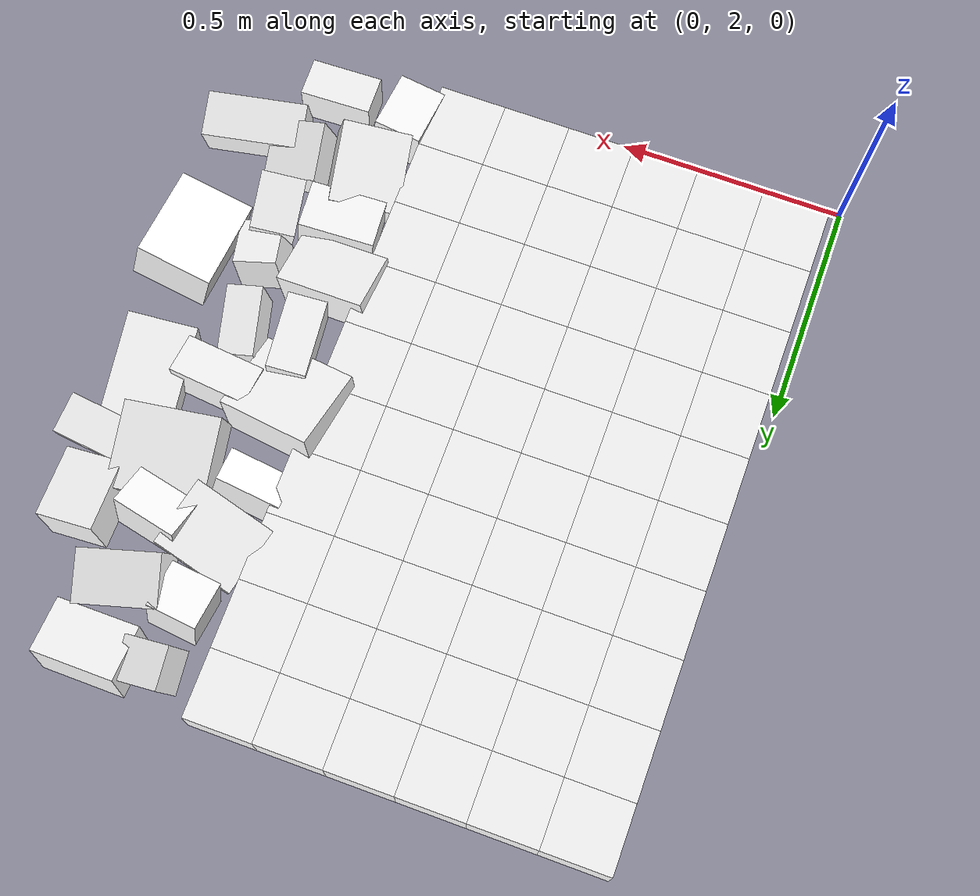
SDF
<sdf version="1.7">
 <world name="default">
  <include><uri>model://sun</uri></include>
  <model name="static_environment">
   <static>true</static>
   <link name="region_214">
    <pose>0.09999999999999964 2.0999999999999996 0.0 0.0 0.0 0.0</pose>
    <collision name="region_214_collision">
     <geometry><box><size>0.15 0.15 0.1</size></box></geometry>
     <surface><friction><ode><mu>1.0</mu><mu2>1.0</mu2></ode></friction></surface>
    </collision>
    <visual name="region_214_visual">
     <geometry><box><size>0.15 0.15 0.1</size></box></geometry>
     <material><ambient>1.0 1.0 1.0 1.0</ambient><diffuse>1.0 1.0 1.0 1.0</diffuse></material>
    </visual>
   </link>
   <link name="region_215">
    <pose>0.24999999999999956 2.0999999999999996 0.0 0.0 0.0 0.0</pose>
    <collision name="region_215_collision">
     <geometry><box><size>0.15 0.15 0.1</size></box></geometry>
     <surface><friction><ode><mu>1.0</mu><mu2>1.0</mu2></ode></friction></surface>
    </collision>
    <visual name="region_215_visual">
     <geometry><box><size>0.15 0.15 0.1</size></box></geometry>
     <material><ambient>1.0 1.0 1.0 1.0</ambient><diffuse>1.0 1.0 1.0 1.0</diffuse></material>
    </visual>
   </link>
   <link name="region_216">
    <pose>0.39999999999999947 2.0999999999999996 0.0 0.0 0.0 0.0</pose>
    <collision name="region_216_collision">
     <geometry><box><size>0.15 0.15 0.1</size></box></geometry>
     <surface><friction><ode><mu>1.0</mu><mu2>1.0</mu2></ode></friction></surface>
    </collision>
    <visual name="region_216_visual">
     <geometry><box><size>0.15 0.15 0.1</size></box></geometry>
     <material><ambient>1.0 1.0 1.0 1.0</ambient><diffuse>1.0 1.0 1.0 1.0</diffuse></material>
    </visual>
   </link>
   <link name="region_217">
    <pose>0.5499999999999994 2.0999999999999996 0.0 0.0 0.0 0.0</pose>
    <collision name="region_217_collision">
     <geometry><box><size>0.15 0.15 0.1</size></box></geometry>
     <surface><friction><ode><mu>1.0</mu><mu2>1.0</mu2></ode></friction></surface>
    </collision>
    <visual name="region_217_visual">
     <geometry><box><size>0.15 0.15 0.1</size></box></geometry>
     <material><ambient>1.0 1.0 1.0 1.0</ambient><diffuse>1.0 1.0 1.0 1.0</diffuse></material>
    </visual>
   </link>
   <link name="region_218">
    <pose>0.6999999999999993 2.0999999999999996 0.0 0.0 0.0 0.0</pose>
    <collision name="region_218_collision">
     <geometry><box><size>0.15 0.15 0.1</size></box></geometry>
     <surface><friction><ode><mu>1.0</mu><mu2>1.0</mu2></ode></friction></surface>
    </collision>
    <visual name="region_218_visual">
     <geometry><box><size>0.15 0.15 0.1</size></box></geometry>
     <material><ambient>1.0 1.0 1.0 1.0</ambient><diffuse>1.0 1.0 1.0 1.0</diffuse></material>
    </visual>
   </link>
   <link name="region_219">
    <pose>0.8499999999999992 2.0999999999999996 0.0 0.0 0.0 0.0</pose>
    <collision name="region_219_collision">
     <geometry><box><size>0.15 0.15 0.1</size></box></geometry>
     <surface><friction><ode><mu>1.0</mu><mu2>1.0</mu2></ode></friction></surface>
    </collision>
    <visual name="region_219_visual">
     <geometry><box><size>0.15 0.15 0.1</size></box></geometry>
     <material><ambient>1.0 1.0 1.0 1.0</ambient><diffuse>1.0 1.0 1.0 1.0</diffuse></material>
    </visual>
   </link>
   <link name="region_234">
    <pose>0.09999999999999964 2.2499999999999996 0.0 0.0 0.0 0.0</pose>
    <collision name="region_234_collision">
     <geometry><box><size>0.15 0.15 0.1</size></box></geometry>
     <surface><friction><ode><mu>1.0</mu><mu2>1.0</mu2></ode></friction></surface>
    </collision>
    <visual name="region_234_visual">
     <geometry><box><size>0.15 0.15 0.1</size></box></geometry>
     <material><ambient>1.0 1.0 1.0 1.0</ambient><diffuse>1.0 1.0 1.0 1.0</diffuse></material>
    </visual>
   </link>
   <link name="region_235">
    <pose>0.24999999999999956 2.2499999999999996 0.0 0.0 0.0 0.0</pose>
    <collision name="region_235_collision">
     <geometry><box><size>0.15 0.15 0.1</size></box></geometry>
     <surface><friction><ode><mu>1.0</mu><mu2>1.0</mu2></ode></friction></surface>
    </collision>
    <visual name="region_235_visual">
     <geometry><box><size>0.15 0.15 0.1</size></box></geometry>
     <material><ambient>1.0 1.0 1.0 1.0</ambient><diffuse>1.0 1.0 1.0 1.0</diffuse></material>
    </visual>
   </link>
   <link name="region_236">
    <pose>0.39999999999999947 2.2499999999999996 0.0 0.0 0.0 0.0</pose>
    <collision name="region_236_collision">
     <geometry><box><size>0.15 0.15 0.1</size></box></geometry>
     <surface><friction><ode><mu>1.0</mu><mu2>1.0</mu2></ode></friction></surface>
    </collision>
    <visual name="region_236_visual">
     <geometry><box><size>0.15 0.15 0.1</size></box></geometry>
     <material><ambient>1.0 1.0 1.0 1.0</ambient><diffuse>1.0 1.0 1.0 1.0</diffuse></material>
    </visual>
   </link>
   <link name="region_237">
    <pose>0.5499999999999994 2.2499999999999996 0.0 0.0 0.0 0.0</pose>
    <collision name="region_237_collision">
     <geometry><box><size>0.15 0.15 0.1</size></box></geometry>
     <surface><friction><ode><mu>1.0</mu><mu2>1.0</mu2></ode></friction></surface>
    </collision>
    <visual name="region_237_visual">
     <geometry><box><size>0.15 0.15 0.1</size></box></geometry>
     <material><ambient>1.0 1.0 1.0 1.0</ambient><diffuse>1.0 1.0 1.0 1.0</diffuse></material>
    </visual>
   </link>
   <link name="region_238">
    <pose>0.6999999999999993 2.2499999999999996 0.0 0.0 0.0 0.0</pose>
    <collision name="region_238_collision">
     <geometry><box><size>0.15 0.15 0.1</size></box></geometry>
     <surface><friction><ode><mu>1.0</mu><mu2>1.0</mu2></ode></friction></surface>
    </collision>
    <visual name="region_238_visual">
     <geometry><box><size>0.15 0.15 0.1</size></box></geometry>
     <material><ambient>1.0 1.0 1.0 1.0</ambient><diffuse>1.0 1.0 1.0 1.0</diffuse></material>
    </visual>
   </link>
   <link name="region_239">
    <pose>0.8499999999999992 2.2499999999999996 0.0 0.0 0.0 0.0</pose>
    <collision name="region_239_collision">
     <geometry><box><size>0.15 0.15 0.1</size></box></geometry>
     <surface><friction><ode><mu>1.0</mu><mu2>1.0</mu2></ode></friction></surface>
    </collision>
    <visual name="region_239_visual">
     <geometry><box><size>0.15 0.15 0.1</size></box></geometry>
     <material><ambient>1.0 1.0 1.0 1.0</ambient><diffuse>1.0 1.0 1.0 1.0</diffuse></material>
    </visual>
   </link>
   <link name="region_254">
    <pose>0.09999999999999964 2.3999999999999995 0.0 0.0 0.0 0.0</pose>
    <collision name="region_254_collision">
     <geometry><box><size>0.15 0.15 0.1</size></box></geometry>
     <surface><friction><ode><mu>1.0</mu><mu2>1.0</mu2></ode></friction></surface>
    </collision>
    <visual name="region_254_visual">
     <geometry><box><size>0.15 0.15 0.1</size></box></geometry>
     <material><ambient>1.0 1.0 1.0 1.0</ambient><diffuse>1.0 1.0 1.0 1.0</diffuse></material>
    </visual>
   </link>
   <link name="region_255">
    <pose>0.24999999999999956 2.3999999999999995 0.0 0.0 0.0 0.0</pose>
    <collision name="region_255_collision">
     <geometry><box><size>0.15 0.15 0.1</size></box></geometry>
     <surface><friction><ode><mu>1.0</mu><mu2>1.0</mu2></ode></friction></surface>
    </collision>
    <visual name="region_255_visual">
     <geometry><box><size>0.15 0.15 0.1</size></box></geometry>
     <material><ambient>1.0 1.0 1.0 1.0</ambient><diffuse>1.0 1.0 1.0 1.0</diffuse></material>
    </visual>
   </link>
   <link name="region_256">
    <pose>0.39999999999999947 2.3999999999999995 0.0 0.0 0.0 0.0</pose>
    <collision name="region_256_collision">
     <geometry><box><size>0.15 0.15 0.1</size></box></geometry>
     <surface><friction><ode><mu>1.0</mu><mu2>1.0</mu2></ode></friction></surface>
    </collision>
    <visual name="region_256_visual">
     <geometry><box><size>0.15 0.15 0.1</size></box></geometry>
     <material><ambient>1.0 1.0 1.0 1.0</ambient><diffuse>1.0 1.0 1.0 1.0</diffuse></material>
    </visual>
   </link>
   <link name="region_257">
    <pose>0.5499999999999994 2.3999999999999995 0.0 0.0 0.0 0.0</pose>
    <collision name="region_257_collision">
     <geometry><box><size>0.15 0.15 0.1</size></box></geometry>
     <surface><friction><ode><mu>1.0</mu><mu2>1.0</mu2></ode></friction></surface>
    </collision>
    <visual name="region_257_visual">
     <geometry><box><size>0.15 0.15 0.1</size></box></geometry>
     <material><ambient>1.0 1.0 1.0 1.0</ambient><diffuse>1.0 1.0 1.0 1.0</diffuse></material>
    </visual>
   </link>
   <link name="region_258">
    <pose>0.6999999999999993 2.3999999999999995 0.0 0.0 0.0 0.0</pose>
    <collision name="region_258_collision">
     <geometry><box><size>0.15 0.15 0.1</size></box></geometry>
     <surface><friction><ode><mu>1.0</mu><mu2>1.0</mu2></ode></friction></surface>
    </collision>
    <visual name="region_258_visual">
     <geometry><box><size>0.15 0.15 0.1</size></box></geometry>
     <material><ambient>1.0 1.0 1.0 1.0</ambient><diffuse>1.0 1.0 1.0 1.0</diffuse></material>
    </visual>
   </link>
   <link name="region_259">
    <pose>0.8499999999999992 2.3999999999999995 0.0 0.0 0.0 0.0</pose>
    <collision name="region_259_collision">
     <geometry><box><size>0.15 0.15 0.1</size></box></geometry>
     <surface><friction><ode><mu>1.0</mu><mu2>1.0</mu2></ode></friction></surface>
    </collision>
    <visual name="region_259_visual">
     <geometry><box><size>0.15 0.15 0.1</size></box></geometry>
     <material><ambient>1.0 1.0 1.0 1.0</ambient><diffuse>1.0 1.0 1.0 1.0</diffuse></material>
    </visual>
   </link>
   <link name="region_274">
    <pose>0.09999999999999964 2.5499999999999994 0.0 0.0 0.0 0.0</pose>
    <collision name="region_274_collision">
     <geometry><box><size>0.15 0.15 0.1</size></box></geometry>
     <surface><friction><ode><mu>1.0</mu><mu2>1.0</mu2></ode></friction></surface>
    </collision>
    <visual name="region_274_visual">
     <geometry><box><size>0.15 0.15 0.1</size></box></geometry>
     <material><ambient>1.0 1.0 1.0 1.0</ambient><diffuse>1.0 1.0 1.0 1.0</diffuse></material>
    </visual>
   </link>
   <link name="region_275">
    <pose>0.24999999999999956 2.5499999999999994 0.0 0.0 0.0 0.0</pose>
    <collision name="region_275_collision">
     <geometry><box><size>0.15 0.15 0.1</size></box></geometry>
     <surface><friction><ode><mu>1.0</mu><mu2>1.0</mu2></ode></friction></surface>
    </collision>
    <visual name="region_275_visual">
     <geometry><box><size>0.15 0.15 0.1</size></box></geometry>
     <material><ambient>1.0 1.0 1.0 1.0</ambient><diffuse>1.0 1.0 1.0 1.0</diffuse></material>
    </visual>
   </link>
   <link name="region_276">
    <pose>0.39999999999999947 2.5499999999999994 0.0 0.0 0.0 0.0</pose>
    <collision name="region_276_collision">
     <geometry><box><size>0.15 0.15 0.1</size></box></geometry>
     <surface><friction><ode><mu>1.0</mu><mu2>1.0</mu2></ode></friction></surface>
    </collision>
    <visual name="region_276_visual">
     <geometry><box><size>0.15 0.15 0.1</size></box></geometry>
     <material><ambient>1.0 1.0 1.0 1.0</ambient><diffuse>1.0 1.0 1.0 1.0</diffuse></material>
    </visual>
   </link>
   <link name="region_277">
    <pose>0.5499999999999994 2.5499999999999994 0.0 0.0 0.0 0.0</pose>
    <collision name="region_277_collision">
     <geometry><box><size>0.15 0.15 0.1</size></box></geometry>
     <surface><friction><ode><mu>1.0</mu><mu2>1.0</mu2></ode></friction></surface>
    </collision>
    <visual name="region_277_visual">
     <geometry><box><size>0.15 0.15 0.1</size></box></geometry>
     <material><ambient>1.0 1.0 1.0 1.0</ambient><diffuse>1.0 1.0 1.0 1.0</diffuse></material>
    </visual>
   </link>
   <link name="region_278">
    <pose>0.6999999999999993 2.5499999999999994 0.0 0.0 0.0 0.0</pose>
    <collision name="region_278_collision">
     <geometry><box><size>0.15 0.15 0.1</size></box></geometry>
     <surface><friction><ode><mu>1.0</mu><mu2>1.0</mu2></ode></friction></surface>
    </collision>
    <visual name="region_278_visual">
     <geometry><box><size>0.15 0.15 0.1</size></box></geometry>
     <material><ambient>1.0 1.0 1.0 1.0</ambient><diffuse>1.0 1.0 1.0 1.0</diffuse></material>
    </visual>
   </link>
   <link name="region_279">
    <pose>0.8499999999999992 2.5499999999999994 0.0 0.0 0.0 0.0</pose>
    <collision name="region_279_collision">
     <geometry><box><size>0.15 0.15 0.1</size></box></geometry>
     <surface><friction><ode><mu>1.0</mu><mu2>1.0</mu2></ode></friction></surface>
    </collision>
    <visual name="region_279_visual">
     <geometry><box><size>0.15 0.15 0.1</size></box></geometry>
     <material><ambient>1.0 1.0 1.0 1.0</ambient><diffuse>1.0 1.0 1.0 1.0</diffuse></material>
    </visual>
   </link>
   <link name="region_294">
    <pose>0.09999999999999964 2.6999999999999997 0.0 0.0 0.0 0.0</pose>
    <collision name="region_294_collision">
     <geometry><box><size>0.15 0.15 0.1</size></box></geometry>
     <surface><friction><ode><mu>1.0</mu><mu2>1.0</mu2></ode></friction></surface>
    </collision>
    <visual name="region_294_visual">
     <geometry><box><size>0.15 0.15 0.1</size></box></geometry>
     <material><ambient>1.0 1.0 1.0 1.0</ambient><diffuse>1.0 1.0 1.0 1.0</diffuse></material>
    </visual>
   </link>
   <link name="region_295">
    <pose>0.24999999999999956 2.6999999999999997 0.0 0.0 0.0 0.0</pose>
    <collision name="region_295_collision">
     <geometry><box><size>0.15 0.15 0.1</size></box></geometry>
     <surface><friction><ode><mu>1.0</mu><mu2>1.0</mu2></ode></friction></surface>
    </collision>
    <visual name="region_295_visual">
     <geometry><box><size>0.15 0.15 0.1</size></box></geometry>
     <material><ambient>1.0 1.0 1.0 1.0</ambient><diffuse>1.0 1.0 1.0 1.0</diffuse></material>
    </visual>
   </link>
   <link name="region_296">
    <pose>0.39999999999999947 2.6999999999999997 0.0 0.0 0.0 0.0</pose>
    <collision name="region_296_collision">
     <geometry><box><size>0.15 0.15 0.1</size></box></geometry>
     <surface><friction><ode><mu>1.0</mu><mu2>1.0</mu2></ode></friction></surface>
    </collision>
    <visual name="region_296_visual">
     <geometry><box><size>0.15 0.15 0.1</size></box></geometry>
     <material><ambient>1.0 1.0 1.0 1.0</ambient><diffuse>1.0 1.0 1.0 1.0</diffuse></material>
    </visual>
   </link>
   <link name="region_297">
    <pose>0.5499999999999994 2.6999999999999997 0.0 0.0 0.0 0.0</pose>
    <collision name="region_297_collision">
     <geometry><box><size>0.15 0.15 0.1</size></box></geometry>
     <surface><friction><ode><mu>1.0</mu><mu2>1.0</mu2></ode></friction></surface>
    </collision>
    <visual name="region_297_visual">
     <geometry><box><size>0.15 0.15 0.1</size></box></geometry>
     <material><ambient>1.0 1.0 1.0 1.0</ambient><diffuse>1.0 1.0 1.0 1.0</diffuse></material>
    </visual>
   </link>
   <link name="region_298">
    <pose>0.6999999999999993 2.6999999999999997 0.0 0.0 0.0 0.0</pose>
    <collision name="region_298_collision">
     <geometry><box><size>0.15 0.15 0.1</size></box></geometry>
     <surface><friction><ode><mu>1.0</mu><mu2>1.0</mu2></ode></friction></surface>
    </collision>
    <visual name="region_298_visual">
     <geometry><box><size>0.15 0.15 0.1</size></box></geometry>
     <material><ambient>1.0 1.0 1.0 1.0</ambient><diffuse>1.0 1.0 1.0 1.0</diffuse></material>
    </visual>
   </link>
   <link name="region_299">
    <pose>0.8499999999999992 2.6999999999999997 0.0 0.0 0.0 0.0</pose>
    <collision name="region_299_collision">
     <geometry><box><size>0.15 0.15 0.1</size></box></geometry>
     <surface><friction><ode><mu>1.0</mu><mu2>1.0</mu2></ode></friction></surface>
    </collision>
    <visual name="region_299_visual">
     <geometry><box><size>0.15 0.15 0.1</size></box></geometry>
     <material><ambient>1.0 1.0 1.0 1.0</ambient><diffuse>1.0 1.0 1.0 1.0</diffuse></material>
    </visual>
   </link>
   <link name="region_314">
    <pose>0.09999999999999964 2.8499999999999996 0.0 0.0 0.0 0.0</pose>
    <collision name="region_314_collision">
     <geometry><box><size>0.15 0.15 0.1</size></box></geometry>
     <surface><friction><ode><mu>1.0</mu><mu2>1.0</mu2></ode></friction></surface>
    </collision>
    <visual name="region_314_visual">
     <geometry><box><size>0.15 0.15 0.1</size></box></geometry>
     <material><ambient>1.0 1.0 1.0 1.0</ambient><diffuse>1.0 1.0 1.0 1.0</diffuse></material>
    </visual>
   </link>
   <link name="region_315">
    <pose>0.24999999999999956 2.8499999999999996 0.0 0.0 0.0 0.0</pose>
    <collision name="region_315_collision">
     <geometry><box><size>0.15 0.15 0.1</size></box></geometry>
     <surface><friction><ode><mu>1.0</mu><mu2>1.0</mu2></ode></friction></surface>
    </collision>
    <visual name="region_315_visual">
     <geometry><box><size>0.15 0.15 0.1</size></box></geometry>
     <material><ambient>1.0 1.0 1.0 1.0</ambient><diffuse>1.0 1.0 1.0 1.0</diffuse></material>
    </visual>
   </link>
   <link name="region_316">
    <pose>0.39999999999999947 2.8499999999999996 0.0 0.0 0.0 0.0</pose>
    <collision name="region_316_collision">
     <geometry><box><size>0.15 0.15 0.1</size></box></geometry>
     <surface><friction><ode><mu>1.0</mu><mu2>1.0</mu2></ode></friction></surface>
    </collision>
    <visual name="region_316_visual">
     <geometry><box><size>0.15 0.15 0.1</size></box></geometry>
     <material><ambient>1.0 1.0 1.0 1.0</ambient><diffuse>1.0 1.0 1.0 1.0</diffuse></material>
    </visual>
   </link>
   <link name="region_317">
    <pose>0.5499999999999994 2.8499999999999996 0.0 0.0 0.0 0.0</pose>
    <collision name="region_317_collision">
     <geometry><box><size>0.15 0.15 0.1</size></box></geometry>
     <surface><friction><ode><mu>1.0</mu><mu2>1.0</mu2></ode></friction></surface>
    </collision>
    <visual name="region_317_visual">
     <geometry><box><size>0.15 0.15 0.1</size></box></geometry>
     <material><ambient>1.0 1.0 1.0 1.0</ambient><diffuse>1.0 1.0 1.0 1.0</diffuse></material>
    </visual>
   </link>
   <link name="region_318">
    <pose>0.6999999999999993 2.8499999999999996 0.0 0.0 0.0 0.0</pose>
    <collision name="region_318_collision">
     <geometry><box><size>0.15 0.15 0.1</size></box></geometry>
     <surface><friction><ode><mu>1.0</mu><mu2>1.0</mu2></ode></friction></surface>
    </collision>
    <visual name="region_318_visual">
     <geometry><box><size>0.15 0.15 0.1</size></box></geometry>
     <material><ambient>1.0 1.0 1.0 1.0</ambient><diffuse>1.0 1.0 1.0 1.0</diffuse></material>
    </visual>
   </link>
   <link name="region_319">
    <pose>0.8499999999999992 2.8499999999999996 0.0 0.0 0.0 0.0</pose>
    <collision name="region_319_collision">
     <geometry><box><size>0.15 0.15 0.1</size></box></geometry>
     <surface><friction><ode><mu>1.0</mu><mu2>1.0</mu2></ode></friction></surface>
    </collision>
    <visual name="region_319_visual">
     <geometry><box><size>0.15 0.15 0.1</size></box></geometry>
     <material><ambient>1.0 1.0 1.0 1.0</ambient><diffuse>1.0 1.0 1.0 1.0</diffuse></material>
    </visual>
   </link>
   <link name="region_334">
    <pose>0.09999999999999964 2.9999999999999996 0.0 0.0 0.0 0.0</pose>
    <collision name="region_334_collision">
     <geometry><box><size>0.15 0.15 0.1</size></box></geometry>
     <surface><friction><ode><mu>1.0</mu><mu2>1.0</mu2></ode></friction></surface>
    </collision>
    <visual name="region_334_visual">
     <geometry><box><size>0.15 0.15 0.1</size></box></geometry>
     <material><ambient>1.0 1.0 1.0 1.0</ambient><diffuse>1.0 1.0 1.0 1.0</diffuse></material>
    </visual>
   </link>
   <link name="region_335">
    <pose>0.24999999999999956 2.9999999999999996 0.0 0.0 0.0 0.0</pose>
    <collision name="region_335_collision">
     <geometry><box><size>0.15 0.15 0.1</size></box></geometry>
     <surface><friction><ode><mu>1.0</mu><mu2>1.0</mu2></ode></friction></surface>
    </collision>
    <visual name="region_335_visual">
     <geometry><box><size>0.15 0.15 0.1</size></box></geometry>
     <material><ambient>1.0 1.0 1.0 1.0</ambient><diffuse>1.0 1.0 1.0 1.0</diffuse></material>
    </visual>
   </link>
   <link name="region_336">
    <pose>0.39999999999999947 2.9999999999999996 0.0 0.0 0.0 0.0</pose>
    <collision name="region_336_collision">
     <geometry><box><size>0.15 0.15 0.1</size></box></geometry>
     <surface><friction><ode><mu>1.0</mu><mu2>1.0</mu2></ode></friction></surface>
    </collision>
    <visual name="region_336_visual">
     <geometry><box><size>0.15 0.15 0.1</size></box></geometry>
     <material><ambient>1.0 1.0 1.0 1.0</ambient><diffuse>1.0 1.0 1.0 1.0</diffuse></material>
    </visual>
   </link>
   <link name="region_337">
    <pose>0.5499999999999994 2.9999999999999996 0.0 0.0 0.0 0.0</pose>
    <collision name="region_337_collision">
     <geometry><box><size>0.15 0.15 0.1</size></box></geometry>
     <surface><friction><ode><mu>1.0</mu><mu2>1.0</mu2></ode></friction></surface>
    </collision>
    <visual name="region_337_visual">
     <geometry><box><size>0.15 0.15 0.1</size></box></geometry>
     <material><ambient>1.0 1.0 1.0 1.0</ambient><diffuse>1.0 1.0 1.0 1.0</diffuse></material>
    </visual>
   </link>
   <link name="region_338">
    <pose>0.6999999999999993 2.9999999999999996 0.0 0.0 0.0 0.0</pose>
    <collision name="region_338_collision">
     <geometry><box><size>0.15 0.15 0.1</size></box></geometry>
     <surface><friction><ode><mu>1.0</mu><mu2>1.0</mu2></ode></friction></surface>
    </collision>
    <visual name="region_338_visual">
     <geometry><box><size>0.15 0.15 0.1</size></box></geometry>
     <material><ambient>1.0 1.0 1.0 1.0</ambient><diffuse>1.0 1.0 1.0 1.0</diffuse></material>
    </visual>
   </link>
   <link name="region_339">
    <pose>0.8499999999999992 2.9999999999999996 0.0 0.0 0.0 0.0</pose>
    <collision name="region_339_collision">
     <geometry><box><size>0.15 0.15 0.1</size></box></geometry>
     <surface><friction><ode><mu>1.0</mu><mu2>1.0</mu2></ode></friction></surface>
    </collision>
    <visual name="region_339_visual">
     <geometry><box><size>0.15 0.15 0.1</size></box></geometry>
     <material><ambient>1.0 1.0 1.0 1.0</ambient><diffuse>1.0 1.0 1.0 1.0</diffuse></material>
    </visual>
   </link>
   <link name="region_354">
    <pose>0.09999999999999964 3.1499999999999995 0.0 0.0 0.0 0.0</pose>
    <collision name="region_354_collision">
     <geometry><box><size>0.15 0.15 0.1</size></box></geometry>
     <surface><friction><ode><mu>1.0</mu><mu2>1.0</mu2></ode></friction></surface>
    </collision>
    <visual name="region_354_visual">
     <geometry><box><size>0.15 0.15 0.1</size></box></geometry>
     <material><ambient>1.0 1.0 1.0 1.0</ambient><diffuse>1.0 1.0 1.0 1.0</diffuse></material>
    </visual>
   </link>
   <link name="region_355">
    <pose>0.24999999999999956 3.1499999999999995 0.0 0.0 0.0 0.0</pose>
    <collision name="region_355_collision">
     <geometry><box><size>0.15 0.15 0.1</size></box></geometry>
     <surface><friction><ode><mu>1.0</mu><mu2>1.0</mu2></ode></friction></surface>
    </collision>
    <visual name="region_355_visual">
     <geometry><box><size>0.15 0.15 0.1</size></box></geometry>
     <material><ambient>1.0 1.0 1.0 1.0</ambient><diffuse>1.0 1.0 1.0 1.0</diffuse></material>
    </visual>
   </link>
   <link name="region_356">
    <pose>0.39999999999999947 3.1499999999999995 0.0 0.0 0.0 0.0</pose>
    <collision name="region_356_collision">
     <geometry><box><size>0.15 0.15 0.1</size></box></geometry>
     <surface><friction><ode><mu>1.0</mu><mu2>1.0</mu2></ode></friction></surface>
    </collision>
    <visual name="region_356_visual">
     <geometry><box><size>0.15 0.15 0.1</size></box></geometry>
     <material><ambient>1.0 1.0 1.0 1.0</ambient><diffuse>1.0 1.0 1.0 1.0</diffuse></material>
    </visual>
   </link>
   <link name="region_357">
    <pose>0.5499999999999994 3.1499999999999995 0.0 0.0 0.0 0.0</pose>
    <collision name="region_357_collision">
     <geometry><box><size>0.15 0.15 0.1</size></box></geometry>
     <surface><friction><ode><mu>1.0</mu><mu2>1.0</mu2></ode></friction></surface>
    </collision>
    <visual name="region_357_visual">
     <geometry><box><size>0.15 0.15 0.1</size></box></geometry>
     <material><ambient>1.0 1.0 1.0 1.0</ambient><diffuse>1.0 1.0 1.0 1.0</diffuse></material>
    </visual>
   </link>
   <link name="region_358">
    <pose>0.6999999999999993 3.1499999999999995 0.0 0.0 0.0 0.0</pose>
    <collision name="region_358_collision">
     <geometry><box><size>0.15 0.15 0.1</size></box></geometry>
     <surface><friction><ode><mu>1.0</mu><mu2>1.0</mu2></ode></friction></surface>
    </collision>
    <visual name="region_358_visual">
     <geometry><box><size>0.15 0.15 0.1</size></box></geometry>
     <material><ambient>1.0 1.0 1.0 1.0</ambient><diffuse>1.0 1.0 1.0 1.0</diffuse></material>
    </visual>
   </link>
   <link name="region_359">
    <pose>0.8499999999999992 3.1499999999999995 0.0 0.0 0.0 0.0</pose>
    <collision name="region_359_collision">
     <geometry><box><size>0.15 0.15 0.1</size></box></geometry>
     <surface><friction><ode><mu>1.0</mu><mu2>1.0</mu2></ode></friction></surface>
    </collision>
    <visual name="region_359_visual">
     <geometry><box><size>0.15 0.15 0.1</size></box></geometry>
     <material><ambient>1.0 1.0 1.0 1.0</ambient><diffuse>1.0 1.0 1.0 1.0</diffuse></material>
    </visual>
   </link>
   <link name="region_374">
    <pose>0.09999999999999964 3.2999999999999994 0.0 0.0 0.0 0.0</pose>
    <collision name="region_374_collision">
     <geometry><box><size>0.15 0.15 0.1</size></box></geometry>
     <surface><friction><ode><mu>1.0</mu><mu2>1.0</mu2></ode></friction></surface>
    </collision>
    <visual name="region_374_visual">
     <geometry><box><size>0.15 0.15 0.1</size></box></geometry>
     <material><ambient>1.0 1.0 1.0 1.0</ambient><diffuse>1.0 1.0 1.0 1.0</diffuse></material>
    </visual>
   </link>
   <link name="region_375">
    <pose>0.24999999999999956 3.2999999999999994 0.0 0.0 0.0 0.0</pose>
    <collision name="region_375_collision">
     <geometry><box><size>0.15 0.15 0.1</size></box></geometry>
     <surface><friction><ode><mu>1.0</mu><mu2>1.0</mu2></ode></friction></surface>
    </collision>
    <visual name="region_375_visual">
     <geometry><box><size>0.15 0.15 0.1</size></box></geometry>
     <material><ambient>1.0 1.0 1.0 1.0</ambient><diffuse>1.0 1.0 1.0 1.0</diffuse></material>
    </visual>
   </link>
   <link name="region_376">
    <pose>0.39999999999999947 3.2999999999999994 0.0 0.0 0.0 0.0</pose>
    <collision name="region_376_collision">
     <geometry><box><size>0.15 0.15 0.1</size></box></geometry>
     <surface><friction><ode><mu>1.0</mu><mu2>1.0</mu2></ode></friction></surface>
    </collision>
    <visual name="region_376_visual">
     <geometry><box><size>0.15 0.15 0.1</size></box></geometry>
     <material><ambient>1.0 1.0 1.0 1.0</ambient><diffuse>1.0 1.0 1.0 1.0</diffuse></material>
    </visual>
   </link>
   <link name="region_377">
    <pose>0.5499999999999994 3.2999999999999994 0.0 0.0 0.0 0.0</pose>
    <collision name="region_377_collision">
     <geometry><box><size>0.15 0.15 0.1</size></box></geometry>
     <surface><friction><ode><mu>1.0</mu><mu2>1.0</mu2></ode></friction></surface>
    </collision>
    <visual name="region_377_visual">
     <geometry><box><size>0.15 0.15 0.1</size></box></geometry>
     <material><ambient>1.0 1.0 1.0 1.0</ambient><diffuse>1.0 1.0 1.0 1.0</diffuse></material>
    </visual>
   </link>
   <link name="region_378">
    <pose>0.6999999999999993 3.2999999999999994 0.0 0.0 0.0 0.0</pose>
    <collision name="region_378_collision">
     <geometry><box><size>0.15 0.15 0.1</size></box></geometry>
     <surface><friction><ode><mu>1.0</mu><mu2>1.0</mu2></ode></friction></surface>
    </collision>
    <visual name="region_378_visual">
     <geometry><box><size>0.15 0.15 0.1</size></box></geometry>
     <material><ambient>1.0 1.0 1.0 1.0</ambient><diffuse>1.0 1.0 1.0 1.0</diffuse></material>
    </visual>
   </link>
   <link name="region_379">
    <pose>0.8499999999999992 3.2999999999999994 0.0 0.0 0.0 0.0</pose>
    <collision name="region_379_collision">
     <geometry><box><size>0.15 0.15 0.1</size></box></geometry>
     <surface><friction><ode><mu>1.0</mu><mu2>1.0</mu2></ode></friction></surface>
    </collision>
    <visual name="region_379_visual">
     <geometry><box><size>0.15 0.15 0.1</size></box></geometry>
     <material><ambient>1.0 1.0 1.0 1.0</ambient><diffuse>1.0 1.0 1.0 1.0</diffuse></material>
    </visual>
   </link>
   <link name="region_394">
    <pose>0.09999999999999964 3.4499999999999993 0.0 0.0 0.0 0.0</pose>
    <collision name="region_394_collision">
     <geometry><box><size>0.15 0.15 0.1</size></box></geometry>
     <surface><friction><ode><mu>1.0</mu><mu2>1.0</mu2></ode></friction></surface>
    </collision>
    <visual name="region_394_visual">
     <geometry><box><size>0.15 0.15 0.1</size></box></geometry>
     <material><ambient>1.0 1.0 1.0 1.0</ambient><diffuse>1.0 1.0 1.0 1.0</diffuse></material>
    </visual>
   </link>
   <link name="region_395">
    <pose>0.24999999999999956 3.4499999999999993 0.0 0.0 0.0 0.0</pose>
    <collision name="region_395_collision">
     <geometry><box><size>0.15 0.15 0.1</size></box></geometry>
     <surface><friction><ode><mu>1.0</mu><mu2>1.0</mu2></ode></friction></surface>
    </collision>
    <visual name="region_395_visual">
     <geometry><box><size>0.15 0.15 0.1</size></box></geometry>
     <material><ambient>1.0 1.0 1.0 1.0</ambient><diffuse>1.0 1.0 1.0 1.0</diffuse></material>
    </visual>
   </link>
   <link name="region_396">
    <pose>0.39999999999999947 3.4499999999999993 0.0 0.0 0.0 0.0</pose>
    <collision name="region_396_collision">
     <geometry><box><size>0.15 0.15 0.1</size></box></geometry>
     <surface><friction><ode><mu>1.0</mu><mu2>1.0</mu2></ode></friction></surface>
    </collision>
    <visual name="region_396_visual">
     <geometry><box><size>0.15 0.15 0.1</size></box></geometry>
     <material><ambient>1.0 1.0 1.0 1.0</ambient><diffuse>1.0 1.0 1.0 1.0</diffuse></material>
    </visual>
   </link>
   <link name="region_397">
    <pose>0.5499999999999994 3.4499999999999993 0.0 0.0 0.0 0.0</pose>
    <collision name="region_397_collision">
     <geometry><box><size>0.15 0.15 0.1</size></box></geometry>
     <surface><friction><ode><mu>1.0</mu><mu2>1.0</mu2></ode></friction></surface>
    </collision>
    <visual name="region_397_visual">
     <geometry><box><size>0.15 0.15 0.1</size></box></geometry>
     <material><ambient>1.0 1.0 1.0 1.0</ambient><diffuse>1.0 1.0 1.0 1.0</diffuse></material>
    </visual>
   </link>
   <link name="region_398">
    <pose>0.6999999999999993 3.4499999999999993 0.0 0.0 0.0 0.0</pose>
    <collision name="region_398_collision">
     <geometry><box><size>0.15 0.15 0.1</size></box></geometry>
     <surface><friction><ode><mu>1.0</mu><mu2>1.0</mu2></ode></friction></surface>
    </collision>
    <visual name="region_398_visual">
     <geometry><box><size>0.15 0.15 0.1</size></box></geometry>
     <material><ambient>1.0 1.0 1.0 1.0</ambient><diffuse>1.0 1.0 1.0 1.0</diffuse></material>
    </visual>
   </link>
   <link name="region_399">
    <pose>0.8499999999999992 3.4499999999999993 0.0 0.0 0.0 0.0</pose>
    <collision name="region_399_collision">
     <geometry><box><size>0.15 0.15 0.1</size></box></geometry>
     <surface><friction><ode><mu>1.0</mu><mu2>1.0</mu2></ode></friction></surface>
    </collision>
    <visual name="region_399_visual">
     <geometry><box><size>0.15 0.15 0.1</size></box></geometry>
     <material><ambient>1.0 1.0 1.0 1.0</ambient><diffuse>1.0 1.0 1.0 1.0</diffuse></material>
    </visual>
   </link>
   <link name="region_600">
    <pose>0.974557928409713 2.1120449451990706 0.013892591132290784 0.13266582652416714 -0.07661377726013507 -0.08861151151030727</pose>
    <collision name="region_600_collision">
     <geometry><box><size>0.10599878084922024 0.1389672986428669 0.1</size></box></geometry>
     <surface><friction><ode><mu>1.0</mu><mu2>1.0</mu2></ode></friction></surface>
    </collision>
    <visual name="region_600_visual">
     <geometry><box><size>0.10599878084922024 0.1389672986428669 0.1</size></box></geometry>
     <material><ambient>1.0 1.0 1.0 1.0</ambient><diffuse>1.0 1.0 1.0 1.0</diffuse></material>
    </visual>
   </link>
   <link name="region_601">
    <pose>1.1348477242225594 2.106004225134476 0.011891544897182499 0.01163427743911466 0.0003626763371940567 0.029329688105104723</pose>
    <collision name="region_601_collision">
     <geometry><box><size>0.1587530456430914 0.08647116402269943 0.1</size></box></geometry>
     <surface><friction><ode><mu>1.0</mu><mu2>1.0</mu2></ode></friction></surface>
    </collision>
    <visual name="region_601_visual">
     <geometry><box><size>0.1587530456430914 0.08647116402269943 0.1</size></box></geometry>
     <material><ambient>1.0 1.0 1.0 1.0</ambient><diffuse>1.0 1.0 1.0 1.0</diffuse></material>
    </visual>
   </link>
   <link name="region_620">
    <pose>1.011280260375115 2.268340260704485 0.02457579046929116 -0.20285144156616775 -0.2262240045344608 0.21090925589646037</pose>
    <collision name="region_620_collision">
     <geometry><box><size>0.15476320865238188 0.1823013249027158 0.1</size></box></geometry>
     <surface><friction><ode><mu>1.0</mu><mu2>1.0</mu2></ode></friction></surface>
    </collision>
    <visual name="region_620_visual">
     <geometry><box><size>0.15476320865238188 0.1823013249027158 0.1</size></box></geometry>
     <material><ambient>1.0 1.0 1.0 1.0</ambient><diffuse>1.0 1.0 1.0 1.0</diffuse></material>
    </visual>
   </link>
   <link name="region_621">
    <pose>1.1705216598001504 2.271514330636631 0.0021925477762504034 -0.18899068400277869 0.18380191517815553 0.13069119411634372</pose>
    <collision name="region_621_collision">
     <geometry><box><size>0.1178927408255511 0.1327758492672925 0.1</size></box></geometry>
     <surface><friction><ode><mu>1.0</mu><mu2>1.0</mu2></ode></friction></surface>
    </collision>
    <visual name="region_621_visual">
     <geometry><box><size>0.1178927408255511 0.1327758492672925 0.1</size></box></geometry>
     <material><ambient>1.0 1.0 1.0 1.0</ambient><diffuse>1.0 1.0 1.0 1.0</diffuse></material>
    </visual>
   </link>
   <link name="region_622">
    <pose>1.2868274494083414 2.2393287512829843 0.009902599509610484 -0.17959094850071972 0.009426253820625341 0.18462051559399206</pose>
    <collision name="region_622_collision">
     <geometry><box><size>0.22333464580819026 0.10087670916566246 0.1</size></box></geometry>
     <surface><friction><ode><mu>1.0</mu><mu2>1.0</mu2></ode></friction></surface>
    </collision>
    <visual name="region_622_visual">
     <geometry><box><size>0.22333464580819026 0.10087670916566246 0.1</size></box></geometry>
     <material><ambient>1.0 1.0 1.0 1.0</ambient><diffuse>1.0 1.0 1.0 1.0</diffuse></material>
    </visual>
   </link>
   <link name="region_640">
    <pose>1.0219643178727416 2.3997991621544883 0.016273086825840683 0.036842342344880596 -0.08323889326391587 0.07733637994165676</pose>
    <collision name="region_640_collision">
     <geometry><box><size>0.1683427792220995 0.10826772946513306 0.1</size></box></geometry>
     <surface><friction><ode><mu>1.0</mu><mu2>1.0</mu2></ode></friction></surface>
    </collision>
    <visual name="region_640_visual">
     <geometry><box><size>0.1683427792220995 0.10826772946513306 0.1</size></box></geometry>
     <material><ambient>1.0 1.0 1.0 1.0</ambient><diffuse>1.0 1.0 1.0 1.0</diffuse></material>
    </visual>
   </link>
   <link name="region_641">
    <pose>1.1607198482744066 2.427228076040712 0.04990997522369669 -0.2292336771712395 -0.18994083636864173 0.18561993483831107</pose>
    <collision name="region_641_collision">
     <geometry><box><size>0.09812847047565657 0.12685121061022625 0.1</size></box></geometry>
     <surface><friction><ode><mu>1.0</mu><mu2>1.0</mu2></ode></friction></surface>
    </collision>
    <visual name="region_641_visual">
     <geometry><box><size>0.09812847047565657 0.12685121061022625 0.1</size></box></geometry>
     <material><ambient>1.0 1.0 1.0 1.0</ambient><diffuse>1.0 1.0 1.0 1.0</diffuse></material>
    </visual>
   </link>
   <link name="region_660">
    <pose>0.9873661406064422 2.5264264124436613 0.0025352897207086 0.11321874112607172 0.20075872885332108 -0.07794649328923309</pose>
    <collision name="region_660_collision">
     <geometry><box><size>0.20672837702002833 0.1294654126342675 0.1</size></box></geometry>
     <surface><friction><ode><mu>1.0</mu><mu2>1.0</mu2></ode></friction></surface>
    </collision>
    <visual name="region_660_visual">
     <geometry><box><size>0.20672837702002833 0.1294654126342675 0.1</size></box></geometry>
     <material><ambient>1.0 1.0 1.0 1.0</ambient><diffuse>1.0 1.0 1.0 1.0</diffuse></material>
    </visual>
   </link>
   <link name="region_661">
    <pose>1.1581259186163009 2.525735763462491 0.011404384727635431 0.161602619967036 0.1303432270375769 0.2372867775419017</pose>
    <collision name="region_661_collision">
     <geometry><box><size>0.09550249048365327 0.1080038290938314 0.1</size></box></geometry>
     <surface><friction><ode><mu>1.0</mu><mu2>1.0</mu2></ode></friction></surface>
    </collision>
    <visual name="region_661_visual">
     <geometry><box><size>0.09550249048365327 0.1080038290938314 0.1</size></box></geometry>
     <material><ambient>1.0 1.0 1.0 1.0</ambient><diffuse>1.0 1.0 1.0 1.0</diffuse></material>
    </visual>
   </link>
   <link name="region_662">
    <pose>1.3086663976723165 2.5534171738025337 0.03578454350394208 0.2026209814081364 -0.19651298990845978 -0.07670832423336055</pose>
    <collision name="region_662_collision">
     <geometry><box><size>0.16763416864392744 0.21866452709255302 0.1</size></box></geometry>
     <surface><friction><ode><mu>1.0</mu><mu2>1.0</mu2></ode></friction></surface>
    </collision>
    <visual name="region_662_visual">
     <geometry><box><size>0.16763416864392744 0.21866452709255302 0.1</size></box></geometry>
     <material><ambient>1.0 1.0 1.0 1.0</ambient><diffuse>1.0 1.0 1.0 1.0</diffuse></material>
    </visual>
   </link>
   <link name="region_680">
    <pose>1.0044463735780131 2.7021659428678997 0.04902244019631466 -0.03630735622268233 -0.07347110792262612 0.0919205152189016</pose>
    <collision name="region_680_collision">
     <geometry><box><size>0.08622605023401585 0.16987991790743506 0.1</size></box></geometry>
     <surface><friction><ode><mu>1.0</mu><mu2>1.0</mu2></ode></friction></surface>
    </collision>
    <visual name="region_680_visual">
     <geometry><box><size>0.08622605023401585 0.16987991790743506 0.1</size></box></geometry>
     <material><ambient>1.0 1.0 1.0 1.0</ambient><diffuse>1.0 1.0 1.0 1.0</diffuse></material>
    </visual>
   </link>
   <link name="region_681">
    <pose>1.1289458885650876 2.7004912128792644 0.01881782350869888 -0.06926425726745716 0.0958559309275715 0.22822547001311555</pose>
    <collision name="region_681_collision">
     <geometry><box><size>0.07885263012762016 0.15590777260964306 0.1</size></box></geometry>
     <surface><friction><ode><mu>1.0</mu><mu2>1.0</mu2></ode></friction></surface>
    </collision>
    <visual name="region_681_visual">
     <geometry><box><size>0.07885263012762016 0.15590777260964306 0.1</size></box></geometry>
     <material><ambient>1.0 1.0 1.0 1.0</ambient><diffuse>1.0 1.0 1.0 1.0</diffuse></material>
    </visual>
   </link>
   <link name="region_700">
    <pose>0.9724820582012601 2.8281131698234074 0.027599820343293474 0.14396942146226221 0.20172164839471274 -0.1735835409237475</pose>
    <collision name="region_700_collision">
     <geometry><box><size>0.2148009256444085 0.18146035170654004 0.1</size></box></geometry>
     <surface><friction><ode><mu>1.0</mu><mu2>1.0</mu2></ode></friction></surface>
    </collision>
    <visual name="region_700_visual">
     <geometry><box><size>0.2148009256444085 0.18146035170654004 0.1</size></box></geometry>
     <material><ambient>1.0 1.0 1.0 1.0</ambient><diffuse>1.0 1.0 1.0 1.0</diffuse></material>
    </visual>
   </link>
   <link name="region_701">
    <pose>1.1361547749672072 2.827649646411145 0.01550187672596911 0.06606246634643337 0.036687137341491705 -0.10667415770366206</pose>
    <collision name="region_701_collision">
     <geometry><box><size>0.17829342007056279 0.08755767324457145 0.1</size></box></geometry>
     <surface><friction><ode><mu>1.0</mu><mu2>1.0</mu2></ode></friction></surface>
    </collision>
    <visual name="region_701_visual">
     <geometry><box><size>0.17829342007056279 0.08755767324457145 0.1</size></box></geometry>
     <material><ambient>1.0 1.0 1.0 1.0</ambient><diffuse>1.0 1.0 1.0 1.0</diffuse></material>
    </visual>
   </link>
   <link name="region_702">
    <pose>1.2812629100706956 2.8643866182548394 0.0006693202523061549 -0.11286521482567308 -0.1142151249027809 0.12590470667149778</pose>
    <collision name="region_702_collision">
     <geometry><box><size>0.15205394928705196 0.2243597180505849 0.1</size></box></geometry>
     <surface><friction><ode><mu>1.0</mu><mu2>1.0</mu2></ode></friction></surface>
    </collision>
    <visual name="region_702_visual">
     <geometry><box><size>0.15205394928705196 0.2243597180505849 0.1</size></box></geometry>
     <material><ambient>1.0 1.0 1.0 1.0</ambient><diffuse>1.0 1.0 1.0 1.0</diffuse></material>
    </visual>
   </link>
   <link name="region_720">
    <pose>0.982163971803848 3.025250025953208 0.010954979320498666 0.18602148217697467 -0.1909507863375971 -0.06861207357843502</pose>
    <collision name="region_720_collision">
     <geometry><box><size>0.14246005988717156 0.076785231022105 0.1</size></box></geometry>
     <surface><friction><ode><mu>1.0</mu><mu2>1.0</mu2></ode></friction></surface>
    </collision>
    <visual name="region_720_visual">
     <geometry><box><size>0.14246005988717156 0.076785231022105 0.1</size></box></geometry>
     <material><ambient>1.0 1.0 1.0 1.0</ambient><diffuse>1.0 1.0 1.0 1.0</diffuse></material>
    </visual>
   </link>
   <link name="region_721">
    <pose>1.1662767369355587 3.0262588276915783 0.03026207088640534 -0.17346198940717245 0.0397129740238954 0.13565269104195382</pose>
    <collision name="region_721_collision">
     <geometry><box><size>0.20910457040857755 0.18628311979284692 0.1</size></box></geometry>
     <surface><friction><ode><mu>1.0</mu><mu2>1.0</mu2></ode></friction></surface>
    </collision>
    <visual name="region_721_visual">
     <geometry><box><size>0.20910457040857755 0.18628311979284692 0.1</size></box></geometry>
     <material><ambient>1.0 1.0 1.0 1.0</ambient><diffuse>1.0 1.0 1.0 1.0</diffuse></material>
    </visual>
   </link>
   <link name="region_722">
    <pose>1.3085052562384085 3.022115121316405 0.005635742459779325 -0.16455470073523493 -0.21038742882014821 -0.07527111922575358</pose>
    <collision name="region_722_collision">
     <geometry><box><size>0.20502785696053707 0.09006972984390338 0.1</size></box></geometry>
     <surface><friction><ode><mu>1.0</mu><mu2>1.0</mu2></ode></friction></surface>
    </collision>
    <visual name="region_722_visual">
     <geometry><box><size>0.20502785696053707 0.09006972984390338 0.1</size></box></geometry>
     <material><ambient>1.0 1.0 1.0 1.0</ambient><diffuse>1.0 1.0 1.0 1.0</diffuse></material>
    </visual>
   </link>
   <link name="region_740">
    <pose>1.013324712665594 3.1565801567125114 0.021179390918779007 -0.09208480174547456 -0.2497708252217326 -0.22462893530388206</pose>
    <collision name="region_740_collision">
     <geometry><box><size>0.18624025735751396 0.1542465656799761 0.1</size></box></geometry>
     <surface><friction><ode><mu>1.0</mu><mu2>1.0</mu2></ode></friction></surface>
    </collision>
    <visual name="region_740_visual">
     <geometry><box><size>0.18624025735751396 0.1542465656799761 0.1</size></box></geometry>
     <material><ambient>1.0 1.0 1.0 1.0</ambient><diffuse>1.0 1.0 1.0 1.0</diffuse></material>
    </visual>
   </link>
   <link name="region_741">
    <pose>1.1351769364858808 3.1500173156457367 0.043162886812569475 0.20985389723238057 0.05923240027515714 -0.2223336910120317</pose>
    <collision name="region_741_collision">
     <geometry><box><size>0.14771594366788984 0.0911280490300668 0.1</size></box></geometry>
     <surface><friction><ode><mu>1.0</mu><mu2>1.0</mu2></ode></friction></surface>
    </collision>
    <visual name="region_741_visual">
     <geometry><box><size>0.14771594366788984 0.0911280490300668 0.1</size></box></geometry>
     <material><ambient>1.0 1.0 1.0 1.0</ambient><diffuse>1.0 1.0 1.0 1.0</diffuse></material>
    </visual>
   </link>
   <link name="region_742">
    <pose>1.2962077530470686 3.164285174915416 0.012653176571452719 0.08015088961140077 0.18300721137484838 0.024859028986265852</pose>
    <collision name="region_742_collision">
     <geometry><box><size>0.1298771043991081 0.15838414141825233 0.1</size></box></geometry>
     <surface><friction><ode><mu>1.0</mu><mu2>1.0</mu2></ode></friction></surface>
    </collision>
    <visual name="region_742_visual">
     <geometry><box><size>0.1298771043991081 0.15838414141825233 0.1</size></box></geometry>
     <material><ambient>1.0 1.0 1.0 1.0</ambient><diffuse>1.0 1.0 1.0 1.0</diffuse></material>
    </visual>
   </link>
   <link name="region_760">
    <pose>1.0165078398211644 3.3046103272844394 0.019280515760479122 0.18341292898072464 -0.04445712216738196 -0.10066306801080649</pose>
    <collision name="region_760_collision">
     <geometry><box><size>0.1105542252462416 0.10876882735404735 0.1</size></box></geometry>
     <surface><friction><ode><mu>1.0</mu><mu2>1.0</mu2></ode></friction></surface>
    </collision>
    <visual name="region_760_visual">
     <geometry><box><size>0.1105542252462416 0.10876882735404735 0.1</size></box></geometry>
     <material><ambient>1.0 1.0 1.0 1.0</ambient><diffuse>1.0 1.0 1.0 1.0</diffuse></material>
    </visual>
   </link>
   <link name="region_761">
    <pose>1.1480211379968952 3.3011662267309716 0.029532488867962326 -0.20628506015364428 0.14631750771116186 0.2444053959029746</pose>
    <collision name="region_761_collision">
     <geometry><box><size>0.18328154125581833 0.11425271149305985 0.1</size></box></geometry>
     <surface><friction><ode><mu>1.0</mu><mu2>1.0</mu2></ode></friction></surface>
    </collision>
    <visual name="region_761_visual">
     <geometry><box><size>0.18328154125581833 0.11425271149305985 0.1</size></box></geometry>
     <material><ambient>1.0 1.0 1.0 1.0</ambient><diffuse>1.0 1.0 1.0 1.0</diffuse></material>
    </visual>
   </link>
   <link name="region_780">
    <pose>1.0273552078270125 3.4469223251535523 0.03363540240015263 -0.1390682411929018 0.22412332844316635 0.047118892329800044</pose>
    <collision name="region_780_collision">
     <geometry><box><size>0.09943182888425288 0.09365227103292594 0.1</size></box></geometry>
     <surface><friction><ode><mu>1.0</mu><mu2>1.0</mu2></ode></friction></surface>
    </collision>
    <visual name="region_780_visual">
     <geometry><box><size>0.09943182888425288 0.09365227103292594 0.1</size></box></geometry>
     <material><ambient>1.0 1.0 1.0 1.0</ambient><diffuse>1.0 1.0 1.0 1.0</diffuse></material>
    </visual>
   </link>
   <link name="region_781">
    <pose>1.1588344183193602 3.4530601674820494 0.018047945702544154 0.13217386379456136 0.1310152576282076 -0.018224455990194233</pose>
    <collision name="region_781_collision">
     <geometry><box><size>0.18829367870840238 0.12251036009288853 0.1</size></box></geometry>
     <surface><friction><ode><mu>1.0</mu><mu2>1.0</mu2></ode></friction></surface>
    </collision>
    <visual name="region_781_visual">
     <geometry><box><size>0.18829367870840238 0.12251036009288853 0.1</size></box></geometry>
     <material><ambient>1.0 1.0 1.0 1.0</ambient><diffuse>1.0 1.0 1.0 1.0</diffuse></material>
    </visual>
   </link>
  </model>
 </world>
</sdf>
